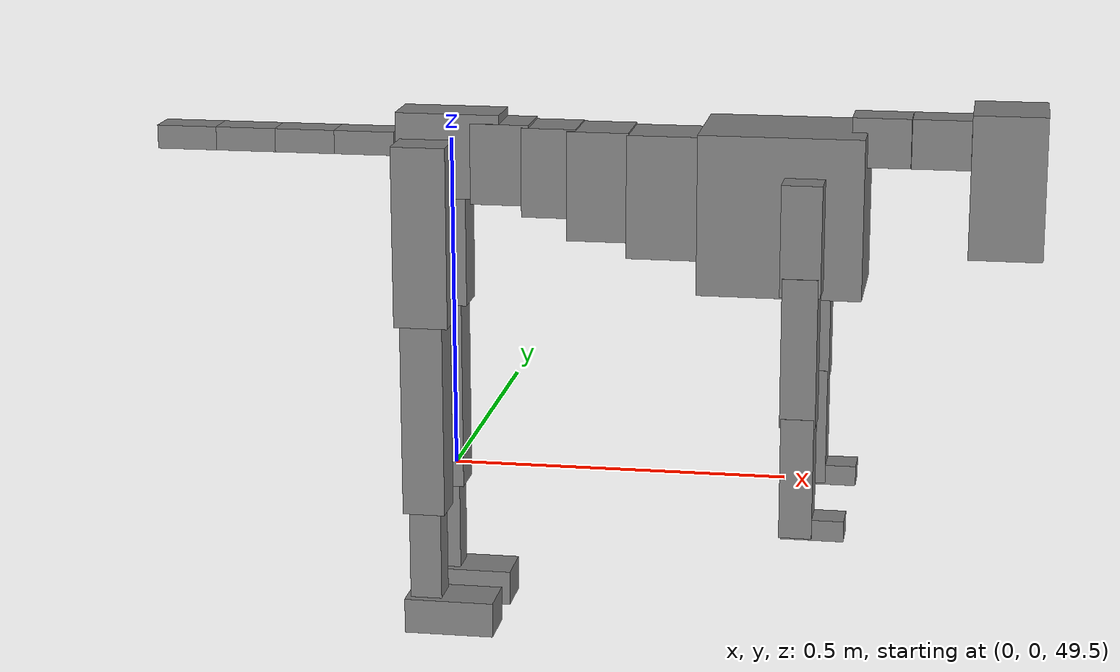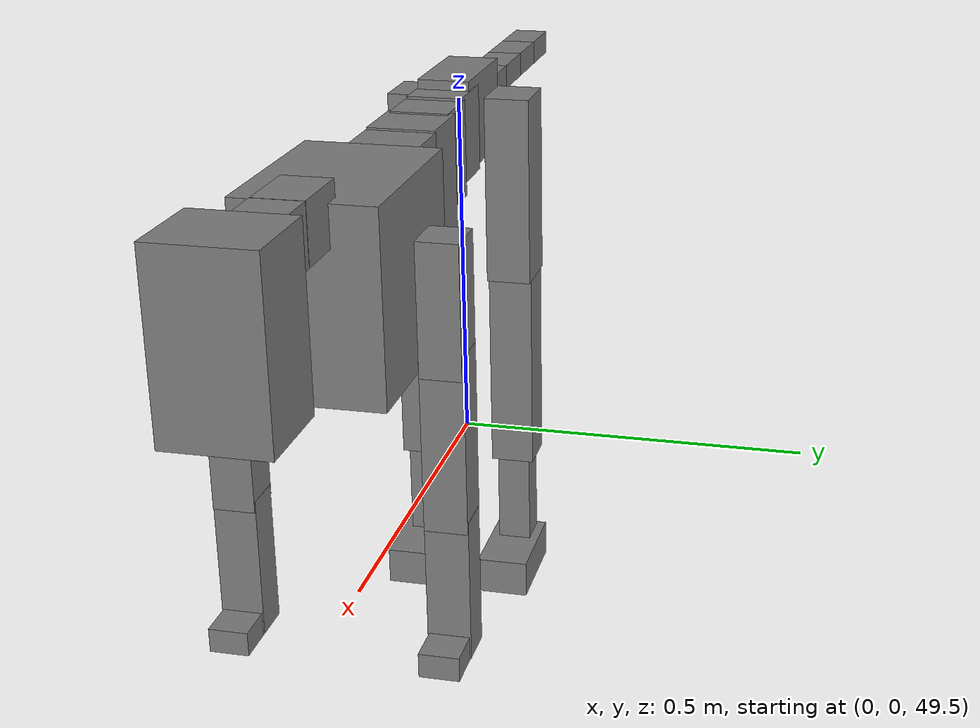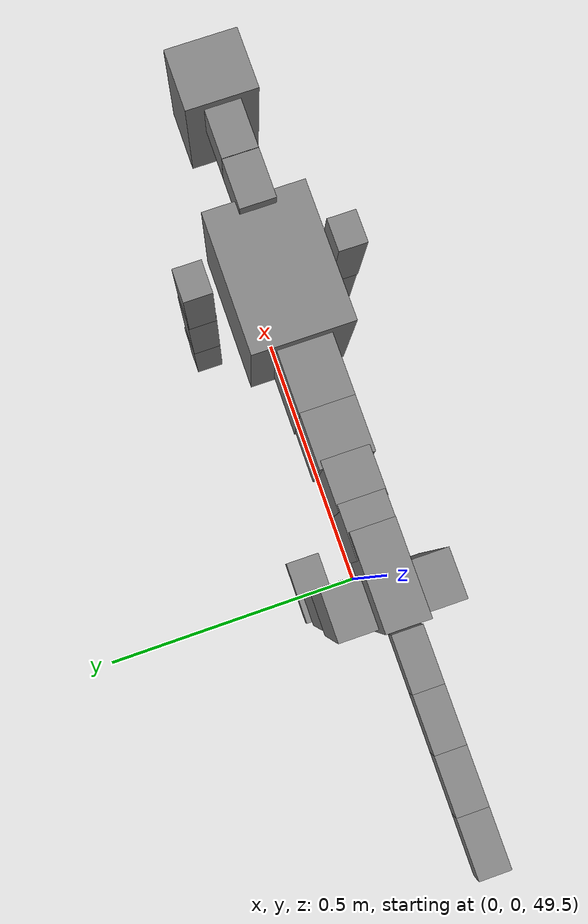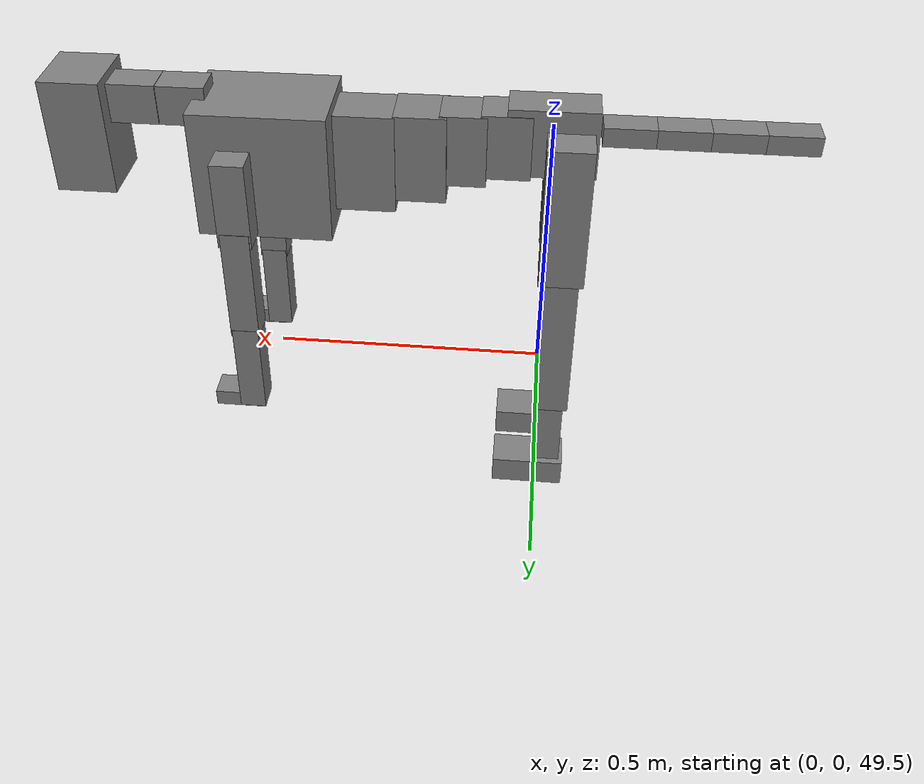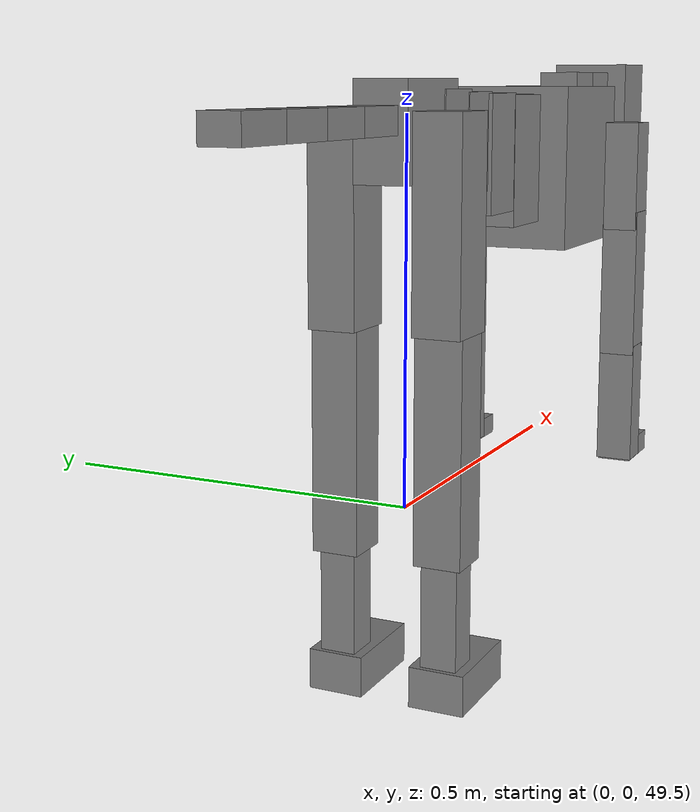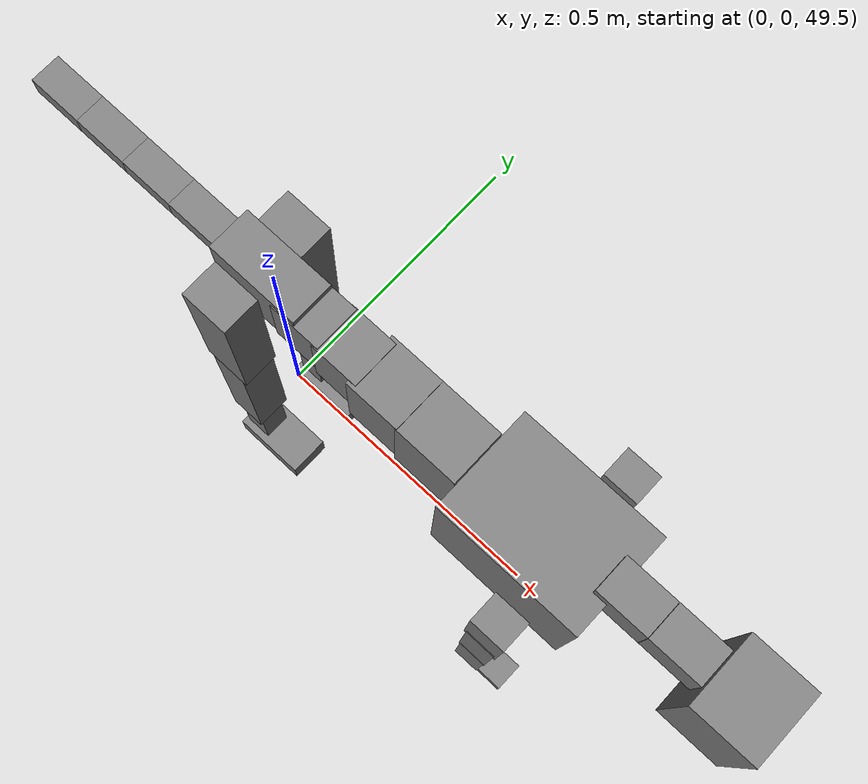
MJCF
<mujoco model="dog">

    <default>
        <joint armature="0.02" stiffness="1" damping="0.2" limited="true"/>
        <geom condim="3" friction="1 0.05 0.05" margin="0.01"/>
        <motor ctrllimited="true" ctrlrange="-1.0 1.0" forcelimited="true" gear="50"/>
    </default>

    <compiler inertiafromgeom="true" angle="radian"/>

    <option timestep="0.016" iterations="50" tolerance="1e-10" solver="Newton" jacobian="dense" cone="pyramidal"/>

    <size nconmax="20000" njmax="60000" nstack="5000000"/>
    <visual>
        <map force="0.1" zfar="30"/>
        <rgba haze="0.15 0.25 0.35 1"/>
        <quality shadowsize="2048"/>
        <global offwidth="800" offheight="800"/>
    </visual>

    <asset>
        <texture type="skybox" builtin="gradient" rgb1="0.3 0.5 0.7" rgb2="0 0 0" width="512" height="512"/>
        <texture name="texplane" type="2d" builtin="checker" rgb1=".2 .3 .4" rgb2=".1 0.15 0.2" width="512" height="512"
                 mark="cross" markrgb=".8 .8 .8"/>
        <texture name="texgeom" type="cube" builtin="flat" mark="cross" width="127" height="1278" rgb1="0.8 0.6 0.4"
                 rgb2="0.8 0.6 0.4" markrgb="1 1 1" random="0.01"/>

        <material name="matplane" reflectance="0.3" texture="texplane" texrepeat="1 1" texuniform="true"/>
        <material name="matgeom" texture="texgeom" texuniform="true" rgba="0.8 0.6 .4 1"/>
    </asset>

    <worldbody>
        <geom name="floor" pos="0 0 0" size="0 0 .25" type="plane" material="matplane" condim="3"/>

        <light directional="false" diffuse=".2 .2 .2" specular="0 0 0" pos="0 0 5" dir="0 0 -1" castshadow="false"/>
        <light mode="targetbodycom" target="torso" directional="false" diffuse=".8 .8 .8" specular="0.3 0.3 0.3"
               pos="0 0 4.0" dir="0 0 -1"/>

        <body name="root" pos="0 0 50">
            <freejoint name="root_1"/>
            <geom type="box" pos="0 0 -0.02" size="0.0774  0.0358  0.063" density="2030"/>

            <body name="spine1" pos="0.054 0 0">
                <joint name="spine1_y" axis="0 1 0" range="0 0.7" limited="true"/>
                <geom type="box" pos="0.02375 0 -0.03" size="0.04375  0.0375  0.05985" density="2030"/>

                <body name="spine2" pos="0.0612 0 0">
                    <joint name="spine2_y" axis="0 1 0" range="-0.15 0.15" limited="true"/>
                    <geom type="box" pos="0.03555  0  -0.04" size="0.04055  0.039  0.06615" density="2030"/>

                    <body name="spine3" pos="0.0730 0 0">
                        <joint name="spine3_y" axis="0 1 0" range="-0.15 0.15" limited="true"/>
                        <geom type="box" pos="0.03555  0  -0.057" size="0.04555  0.0445  0.081" density="2030"/>

                        <body name="spine4" pos="0.0780 0 0">
                            <joint name="spine4_y" axis="0 1 0" range="-0.15 0.15" limited="true"/>
                            <geom type="box" pos="0.05265  0  -0.07" size="0.05265  0.045  0.09135" density="2030"/>

                            <body name="torso" pos="0.1082 0 0">
                                <joint name="torso_y" axis="0 1 0" range="-0.15 0.15" limited="true"/>
                                <geom type="box" pos="0.11925  0  -0.085" size="0.11925  0.085  0.11745"
                                      density="2030"/>

                                <body name="neck1" pos="0.2160  0   0.0180">
                                    <joint name="neck1_y" axis="0 1 0" range="-1.2  -1" limited="true"/>
                                    <geom type="box" pos="0.0423  0  0" size="0.0423  0.03  0.036" density="2325"/>

                                    <body name="neck2" pos="0.0853  0  0">
                                        <joint name="neck2_y" axis="0 1 0" range="0.1  0" limited="true"/>
                                        <geom type="box" pos="0.0423  0  0" size="0.0423  0.03  0.036" density="2325"/>

                                        <body name="head" pos="0.0853  0  0">
                                            <joint name="head_y" axis="0 1 0" range="-0.3  -0.2" limited="true"/>
                                            <geom type="box" pos="0.0531  0  -0.055" size="0.0531  0.06  0.1044"
                                                  density="4030"/>

                                        </body>
                                    </body>
                                </body>

                                <body name="front_shoulder" pos="0.156  0   -0.0480">
                                    <joint name="front_shoulder_y" axis="0 1 0" range="-1 1.5" limited="true"/>
                                    <geom type="box" pos="0 0.13 -0.0537" size="0.0291  0.0249  0.0804" density="1158"/>
                                    <geom type="box" pos="0 -0.13 -0.0537" size="0.0291  0.0249  0.0804"
                                          density="1158"/>

                                    <body name="front_elbow" pos="0  0  -0.1075">
                                        <joint name="front_elbow_y" axis="0 1 0" range="-2 0" limited="true"/>
                                        <geom type="box" pos="0 0.13 -0.1094" size="0.0256  0.0261  0.1094"
                                              density="1081"/>
                                        <geom type="box" pos="0 -0.13 -0.1094" size="0.0256  0.0261  0.1094"
                                              density="1081"/>

                                        <body name="front_wrist" pos="0  0  -0.2188">
                                            <joint name="front_wrist_y" axis="0 1 0" range="-0.2 0" limited="true"/>
                                            <geom type="box" pos="0 0.13 -0.0762" size="0.0237  0.0264  0.0893"
                                                  density="1664"/>
                                            <geom type="box" pos="0 -0.13 -0.0762" size="0.0237  0.0264  0.0893"
                                                  density="1664"/>

                                            <body name="front_finger_end" pos="0  0  -0.1524">
                                                <joint name="front_finger_y" axis="0 1 0" range="-0.4 1"
                                                       limited="true"/>
                                                <geom type="box" pos="0.0246  0.13  -0.0003"
                                                      size="0.0451  0.0246  0.0153" density="1515"/>
                                                <geom type="box" pos="0.0246  -0.13  -0.0003"
                                                      size="0.0451  0.0246  0.0153" density="1515"/>

                                            </body>

                                        </body>
                                    </body>
                                </body>

                            </body>
                        </body>
                    </body>
                </body>
            </body>

            <body name="back_hip" pos="-0.03 0 -0.018">
                <joint name="back_hip_y" axis="0 1 0" range="-1.5 0.3" limited="true"/>
                <geom type="box" pos="0 0.07 -0.1120" size="0.0403  0.0316  0.1348" density="1154"/>
                <geom type="box" pos="0 -0.07 -0.1120" size="0.0403  0.0316  0.1348" density="1154"/>

                <body name="back_knee" pos="0  0  -0.2241">
                    <joint name="back_knee_y" axis="0 1 0" range="0 2.8" limited="true"/>
                    <geom type="box" pos="0 0.07 -0.1479" size="0.0317  0.0312  0.1634" density="1227"/>
                    <geom type="box" pos="0 -0.07 -0.1479" size="0.0317  0.0312  0.1634" density="1227"/>

                    <body name="back_ankle" pos="0  0  -0.2957">
                        <joint name="back_ankle_y" axis="0 1 0" range="-2.2 0" limited="true"/>
                        <geom type="box" pos="0 0.07 -0.0823" size="0.0238  0.0238  0.0936" density="1284"/>
                        <geom type="box" pos="0 -0.07 -0.0823" size="0.0238  0.0238  0.0936" density="1284"/>

                        <body name="back_toe_end" pos="0  0  -0.1646">
                            <joint name="back_toe_y" axis="0 1 0" range="-0.4 1" limited="true"/>
                            <geom type="box" pos="0.0368  0.07  -0.0115" size="0.0675  0.0368  0.0265" density="1515"/>
                            <geom type="box" pos="0.0368  -0.07  -0.0115" size="0.0675  0.0368  0.0265" density="1515"/>

                        </body>
                    </body>
                </body>
            </body>

            <body name="tail1" pos="-0.074 0 -0.006">
                <joint name="tail1_y" axis="0 1 0" range="-0.2 0.2" limited="true"/>
                <geom type="box" pos="-0.0536  0  0" size="0.045  0.025  0.0175" density="1587"/>

                <body name="tail2" pos="-0.09 0 0">
                    <joint name="tail2_y" axis="0 1 0" range="-0.2 0.2" limited="true"/>
                    <geom type="box" pos="-0.0536  0  0" size="0.045  0.025  0.0175" density="1587"/>

                    <body name="tail3" pos="-0.09 0 0">
                        <joint name="tail3_y" axis="0 1 0" range="-0.2 0.2" limited="true"/>
                        <geom type="box" pos="-0.0536  0  0" size="0.045  0.025  0.0175" density="1587"/>

                        <body name="tail4" pos="-0.09 0 0">
                            <joint name="tail4_y" axis="0 1 0" range="-0.2 0.2" limited="true"/>
                            <geom type="box" pos="-0.0536  0  0" size="0.045  0.025  0.0175" density="1587"/>

                        </body>
                    </body>
                </body>
            </body>
        </body>
    </worldbody>

    <actuator>
        <motor joint="spine1_y" forcerange="-150 150     "/>
        <motor joint="spine2_y" forcerange="-150 150     "/>
        <motor joint="spine3_y" forcerange="-150 150     "/>
        <motor joint="spine4_y" forcerange="-150 150     "/>
        <motor joint="torso_y" forcerange="-150 150     "/>
        <motor joint="neck1_y" forcerange="-100 100       "/>
        <motor joint="neck2_y" forcerange="-100 100       "/>
        <motor joint="head_y" forcerange="-150 150       "/>
        <motor joint="front_shoulder_y" forcerange="-156.38 109.68"/>
        <motor joint="front_elbow_y" forcerange="-154.30 135.72"/>
        <motor joint="front_wrist_y" forcerange="-113.00 97.83"/>
        <motor joint="front_finger_y" forcerange="-21.70 69.51"/>
        <motor joint="back_hip_y" forcerange="-375.87 245.14"/>
        <motor joint="back_knee_y" forcerange="-343.61 310.61"/>
        <motor joint="back_angle_y" forcerange="-162.35 118.97"/>
        <motor joint="back_toe_y" forcerange="-90.92 123.67"/>
        <motor joint="tail1_y" forcerange="-50 50     "/>
        <motor joint="tail2_y" forcerange="-50 50     "/>
        <motor joint="tail3_y" forcerange="-50 50     "/>
        <motor joint="tail4_y" forcerange="-50 50     "/>
    </actuator>
</mujoco>
